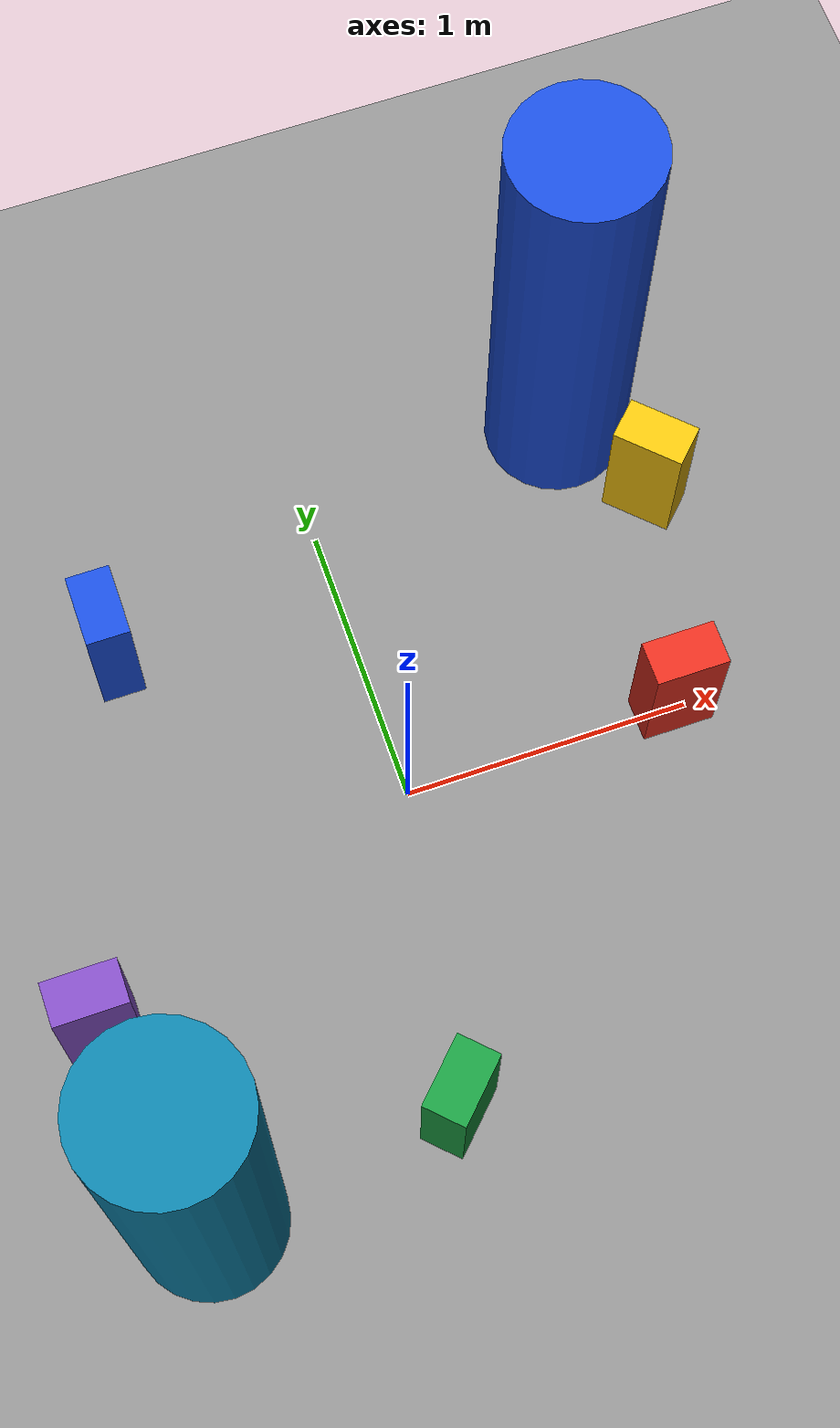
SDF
<sdf version="1.7">
 <world name="stage8_circular_final_realistic">
  <light name="sun" type="directional">
   <pose>0 0 10 0 0 0</pose>
   <diffuse>0.8 0.8 0.8 1</diffuse>
   <specular>0.2 0.2 0.2 1</specular>
   <attenuation>
    <range>1000</range>
    <constant>0.9</constant>
    <linear>0.01</linear>
    <quadratic>0.001</quadratic>
   </attenuation>
   <direction>-0.5 0.1 -0.9</direction>
  </light>
  <model name="ground_plane">
   <static>true</static>
   <link name="link">
    <collision name="collision">
     <geometry><plane><normal>0 0 1</normal><size>100 100</size></plane></geometry>
     <surface>
      <friction><ode><mu>80</mu><mu2>80</mu2></ode></friction>
      <bounce><restitution_coefficient>0</restitution_coefficient><threshold>1000000</threshold></bounce>
      <contact>
       <ode>
        <soft_cfm>0.001</soft_cfm>
        <soft_erp>0.2</soft_erp>
        <kp>1000000</kp>
        <kd>10</kd>
        <max_vel>0.05</max_vel>
        <min_depth>0.001</min_depth>
       </ode>
      </contact>
     </surface>
    </collision>
    <visual name="visual">
     <cast_shadows>0</cast_shadows>
     <geometry><plane><normal>0 0 1</normal><size>100 100</size></plane></geometry>
     <material><ambient>0.56 0.56 0.56 1</ambient><diffuse>0.56 0.56 0.56 1</diffuse></material>
    </visual>
   </link>
  </model>
  <gravity>0 0 -9.8</gravity>
  <physics type="ode">
   <max_step_size>0.001</max_step_size>
   <real_time_factor>1</real_time_factor>
   <real_time_update_rate>1000</real_time_update_rate>
  </physics>
  <scene>
   <ambient>0.45 0.45 0.45 1</ambient>
   <background>0.70 0.72 0.74 1</background>
   <shadows>1</shadows>
  </scene>
  <model name="final_real_box_1">
   <static>true</static>
   <pose>0.95 0.00 0.25 0 0 0</pose>
   <link name="link">
    <collision name="collision"><geometry><box><size>0.25 0.15 0.50</size></box></geometry></collision>
    <visual name="visual">
     <geometry><box><size>0.25 0.15 0.50</size></box></geometry>
     <material><ambient>0.88 0.18 0.12 1</ambient><diffuse>0.88 0.18 0.12 1</diffuse></material>
    </visual>
   </link>
  </model>
  <model name="final_real_box_2">
   <static>true</static>
   <pose>-0.80 0.78 0.25 0 0 1.570796</pose>
   <link name="link">
    <collision name="collision"><geometry><box><size>0.25 0.15 0.50</size></box></geometry></collision>
    <visual name="visual">
     <geometry><box><size>0.25 0.15 0.50</size></box></geometry>
     <material><ambient>0.10 0.30 0.85 1</ambient><diffuse>0.10 0.30 0.85 1</diffuse></material>
    </visual>
   </link>
  </model>
  <model name="final_real_box_3">
   <static>true</static>
   <pose>-0.20 -1.08 0.25 0 0 0.785398</pose>
   <link name="link">
    <collision name="collision"><geometry><box><size>0.25 0.15 0.50</size></box></geometry></collision>
    <visual name="visual">
     <geometry><box><size>0.25 0.15 0.50</size></box></geometry>
     <material><ambient>0.10 0.60 0.25 1</ambient><diffuse>0.10 0.60 0.25 1</diffuse></material>
    </visual>
   </link>
  </model>
  <model name="final_real_box_4">
   <static>true</static>
   <pose>1.15 0.78 0.25 0 0 -0.785398</pose>
   <link name="link">
    <collision name="collision"><geometry><box><size>0.25 0.15 0.50</size></box></geometry></collision>
    <visual name="visual">
     <geometry><box><size>0.25 0.15 0.50</size></box></geometry>
     <material><ambient>0.95 0.75 0.05 1</ambient><diffuse>0.95 0.75 0.05 1</diffuse></material>
    </visual>
   </link>
  </model>
  <model name="final_real_box_5">
   <static>true</static>
   <pose>-1.20 -0.45 0.25 0 0 0</pose>
   <link name="link">
    <collision name="collision"><geometry><box><size>0.25 0.15 0.50</size></box></geometry></collision>
    <visual name="visual">
     <geometry><box><size>0.25 0.15 0.50</size></box></geometry>
     <material><ambient>0.50 0.30 0.75 1</ambient><diffuse>0.50 0.30 0.75 1</diffuse></material>
    </visual>
   </link>
  </model>
  <model name="final_dynamic_human_1">
   <static>false</static>
   <allow_auto_disable>false</allow_auto_disable>
   <pose>0.95 1.15 0.85 0 0 0</pose>
   <link name="link">
    <inertial>
     <mass>70.0</mass>
     <inertia><ixx>8.5</ixx><ixy>0</ixy><ixz>0</ixz><iyy>8.5</iyy><iyz>0</iyz><izz>2.2</izz></inertia>
    </inertial>
    <gravity>false</gravity>
    <kinematic>true</kinematic>
    <collision name="collision">
     <geometry><cylinder><radius>0.25</radius><length>1.70</length></cylinder></geometry>
    </collision>
    <visual name="visual">
     <geometry><cylinder><radius>0.25</radius><length>1.70</length></cylinder></geometry>
     <material><ambient>0.10 0.30 0.85 1</ambient><diffuse>0.10 0.30 0.85 1</diffuse></material>
    </visual>
   </link>
  </model>
  <model name="final_dynamic_human_2">
   <static>false</static>
   <allow_auto_disable>false</allow_auto_disable>
   <pose>-1.05 -1.15 0.85 0 0 0</pose>
   <link name="link">
    <inertial>
     <mass>70.0</mass>
     <inertia><ixx>8.5</ixx><ixy>0</ixy><ixz>0</ixz><iyy>8.5</iyy><iyz>0</iyz><izz>2.2</izz></inertia>
    </inertial>
    <gravity>false</gravity>
    <kinematic>true</kinematic>
    <collision name="collision">
     <geometry><cylinder><radius>0.25</radius><length>1.70</length></cylinder></geometry>
    </collision>
    <visual name="visual">
     <geometry><cylinder><radius>0.25</radius><length>1.70</length></cylinder></geometry>
     <material><ambient>0.05 0.50 0.65 1</ambient><diffuse>0.05 0.50 0.65 1</diffuse></material>
    </visual>
   </link>
  </model>
  <plugin name="gazebo_ros_state" filename="libgazebo_ros_state.so"><update_rate>1.0</update_rate></plugin>
 </world>
</sdf>
